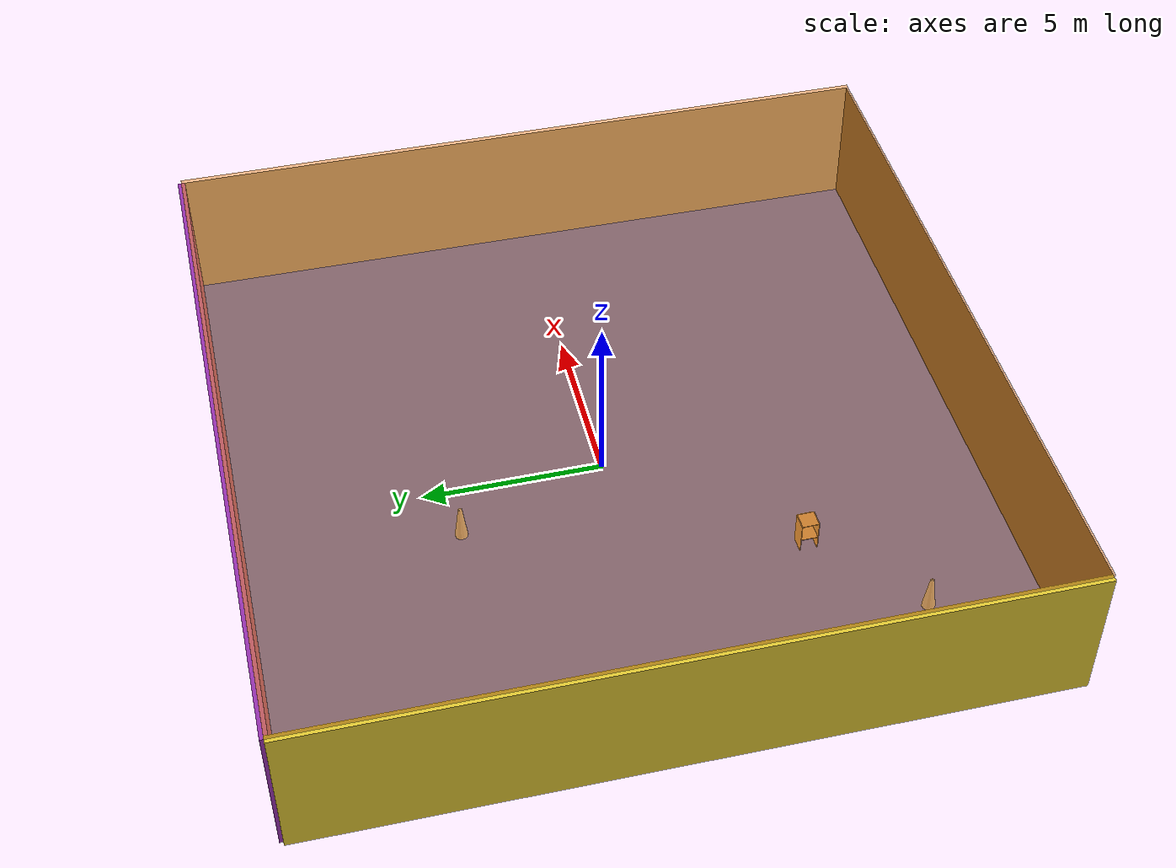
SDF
<sdf version="1.4">
 <world name="default">
  <physics type="ode">
   <max_step_size>0.001</max_step_size>
   <real_time_factor>1</real_time_factor>
   <real_time_update_rate>1000</real_time_update_rate>
   <gravity>0 0 -9.8</gravity>
  </physics>
  <scene><ambient>0.4 0.4 0.4 1</ambient><background>0.7 0.7 0.7 1</background><shadows>1</shadows></scene>
  <model name="Surrounding">
   <static>1</static>
   <link name="Ceiling">
    <collision name="Ceiling_Collision"><geometry><box><size>20 20 0.1</size></box></geometry></collision>
    <visual name="Ceiling_Visual">
     <geometry><box><size>20 20 0.1</size></box></geometry>
     <material>
      <script>
       <uri>file://media/materials/scripts/gazebo.material</uri>
       <name>Gazebo/OrangeTransparent</name>
      </script>
     </material>
    </visual>
    <pose>0 0 4.05 0 0 0</pose>
   </link>
   <link name="Wall_South">
    <collision name="Wall_South_Collision">
     <geometry><box><size>20 0 4</size></box></geometry>
     <pose>0 0 2 0 -0 0</pose>
    </collision>
    <visual name="Wall_South_Visual">
     <pose>0 0 2 0 -0 0</pose>
     <geometry><box><size>20 0 4</size></box></geometry>
     <material>
      <script><uri>file://media/materials/scripts/gazebo.material</uri><name>Gazebo/Black</name></script>
     </material>
    </visual>
    <velocity_decay><linear>0</linear><angular>0</angular></velocity_decay>
    <pose>0 -10 0 0 -0 0</pose>
   </link>
   <link name="Wall_East">
    <collision name="Wall_21_Collision">
     <geometry><box><size>20 0 4</size></box></geometry>
     <pose>0 0 2 0 -0 0</pose>
    </collision>
    <visual name="Wall_21_Visual">
     <pose>0 0 2 0 -0 0</pose>
     <geometry><box><size>20 0 4</size></box></geometry>
     <material>
      <script><uri>file://media/materials/scripts/gazebo.material</uri><name>Gazebo/Pioneer2Body</name></script>
     </material>
    </visual>
    <velocity_decay><linear>0</linear><angular>0</angular></velocity_decay>
    <pose>10 0 0 0 -0 1.5708</pose>
   </link>
   <link name="Wall_North">
    <collision name="Wall_22_Collision">
     <geometry><box><size>20 0.2 4</size></box></geometry>
     <pose>0 0 2 0 -0 0</pose>
    </collision>
    <visual name="Wall_22_Visual">
     <pose>0 0 2 0 -0 0</pose>
     <geometry><box><size>20 0.2 4</size></box></geometry>
     <material>
      <script><uri>file://media/materials/scripts/gazebo.material</uri><name>Gazebo/PurpleGlow</name></script>
     </material>
    </visual>
    <velocity_decay><linear>0</linear><angular>0</angular></velocity_decay>
    <pose>0 10 0 0 -0 0</pose>
   </link>
   <link name="Wall_West">
    <collision name="Wall_23_Collision">
     <geometry><box><size>20 0.2 4</size></box></geometry>
     <pose>0 0 2 0 -0 0</pose>
    </collision>
    <visual name="Wall_23_Visual">
     <pose>0 0 2 0 -0 0</pose>
     <geometry><box><size>20 0.2 4</size></box></geometry>
     <material>
      <script><uri>file://media/materials/scripts/gazebo.material</uri><name>Gazebo/ZincYellow</name></script>
     </material>
    </visual>
    <velocity_decay><linear>0</linear><angular>0</angular></velocity_decay>
    <pose>-10 0 0 0 0 -1.5708</pose>
   </link>
   <link name="Ground_link">
    <collision name="collision">
     <pose>0 0 .05 0 -0 0</pose>
     <geometry><box><size>20 20 0.1</size></box></geometry>
    </collision>
    <visual name="visual">
     <pose>0 0 .05 0 -0 0</pose>
     <geometry><box><size>20 20 0.1</size></box></geometry>
     <material>
      <script><uri>file://media/materials/scripts/gazebo.material</uri><name>Gazebo/BlueLaser</name></script>
     </material>
    </visual>
   </link>
   <static>1</static>
  </model>
  <spherical_coordinates>
   <surface_model>EARTH_WGS84</surface_model>
   <latitude_deg>0</latitude_deg>
   <longitude_deg>0</longitude_deg>
   <elevation>0</elevation>
   <heading_deg>0</heading_deg>
  </spherical_coordinates>
  <light name="lightball_0" type="diffuse">
   <diffuse>0.8 0.8 0.8 1</diffuse>
   <specular>0.2 0.2 0.2 1</specular>
   <attenuation>
    <range>100</range>
    <constant>0.7</constant>
    <linear>0.01</linear>
    <quadratic>0.001</quadratic>
   </attenuation>
   <direction>-0.5 0.1 -0.9</direction>
   <pose>3.4259998423 6.0085730916 3.37598304708 0 0 0</pose>
  </light>
  <light name="lightball_1" type="diffuse">
   <diffuse>0.8 0.8 0.8 1</diffuse>
   <specular>0.2 0.2 0.2 1</specular>
   <attenuation>
    <range>100</range>
    <constant>0.7</constant>
    <linear>0.01</linear>
    <quadratic>0.001</quadratic>
   </attenuation>
   <direction>-0.5 0.1 -0.9</direction>
   <pose>-6.30314409581 9.34618342541 3.402573909 0 0 0</pose>
  </light>
  <light name="lightball_2" type="diffuse">
   <diffuse>0.8 0.8 0.8 1</diffuse>
   <specular>0.2 0.2 0.2 1</specular>
   <attenuation>
    <range>100</range>
    <constant>0.7</constant>
    <linear>0.01</linear>
    <quadratic>0.001</quadratic>
   </attenuation>
   <direction>-0.5 0.1 -0.9</direction>
   <pose>4.68205116352 3.88894748488 2.57614844682 0 0 0</pose>
  </light>
  <light name="lightball_3" type="diffuse">
   <diffuse>0.8 0.8 0.8 1</diffuse>
   <specular>0.2 0.2 0.2 1</specular>
   <attenuation>
    <range>100</range>
    <constant>0.7</constant>
    <linear>0.01</linear>
    <quadratic>0.001</quadratic>
   </attenuation>
   <direction>-0.5 0.1 -0.9</direction>
   <pose>-9.72180655095 7.51161911158 0.91493898106 0 0 0</pose>
  </light>
  <light name="lightball_4" type="diffuse">
   <diffuse>0.8 0.8 0.8 1</diffuse>
   <specular>0.2 0.2 0.2 1</specular>
   <attenuation>
    <range>100</range>
    <constant>0.7</constant>
    <linear>0.01</linear>
    <quadratic>0.001</quadratic>
   </attenuation>
   <direction>-0.5 0.1 -0.9</direction>
   <pose>7.3538006955 1.58106893296 2.42998351099 0 0 0</pose>
  </light>
  <light name="lightball_5" type="diffuse">
   <diffuse>0.8 0.8 0.8 1</diffuse>
   <specular>0.2 0.2 0.2 1</specular>
   <attenuation>
    <range>100</range>
    <constant>0.7</constant>
    <linear>0.01</linear>
    <quadratic>0.001</quadratic>
   </attenuation>
   <direction>-0.5 0.1 -0.9</direction>
   <pose>-4.22914251686 -4.7885148054 1.66121345221 0 0 0</pose>
  </light>
  <light name="lightball_6" type="diffuse">
   <diffuse>0.8 0.8 0.8 1</diffuse>
   <specular>0.2 0.2 0.2 1</specular>
   <attenuation>
    <range>100</range>
    <constant>0.7</constant>
    <linear>0.01</linear>
    <quadratic>0.001</quadratic>
   </attenuation>
   <direction>-0.5 0.1 -0.9</direction>
   <pose>-1.06751640641 2.88945620324 1.63998240026 0 0 0</pose>
  </light>
  <light name="lightball_7" type="diffuse">
   <diffuse>0.8 0.8 0.8 1</diffuse>
   <specular>0.2 0.2 0.2 1</specular>
   <attenuation>
    <range>100</range>
    <constant>0.7</constant>
    <linear>0.01</linear>
    <quadratic>0.001</quadratic>
   </attenuation>
   <direction>-0.5 0.1 -0.9</direction>
   <pose>1.57605557539 1.53740204651 3.43242646896 0 0 0</pose>
  </light>
  <light name="lightball_8" type="diffuse">
   <diffuse>0.8 0.8 0.8 1</diffuse>
   <specular>0.2 0.2 0.2 1</specular>
   <attenuation>
    <range>100</range>
    <constant>0.7</constant>
    <linear>0.01</linear>
    <quadratic>0.001</quadratic>
   </attenuation>
   <direction>-0.5 0.1 -0.9</direction>
   <pose>-8.83321301213 0.569218740532 1.10935597171 0 0 0</pose>
  </light>
  <light name="lightball_9" type="diffuse">
   <diffuse>0.8 0.8 0.8 1</diffuse>
   <specular>0.2 0.2 0.2 1</specular>
   <attenuation>
    <range>100</range>
    <constant>0.7</constant>
    <linear>0.01</linear>
    <quadratic>0.001</quadratic>
   </attenuation>
   <direction>-0.5 0.1 -0.9</direction>
   <pose>6.38947654594 6.88384278012 3.59769314437 0 0 0</pose>
  </light>
  <light name="lightball_10" type="diffuse">
   <diffuse>0.8 0.8 0.8 1</diffuse>
   <specular>0.2 0.2 0.2 1</specular>
   <attenuation>
    <range>100</range>
    <constant>0.7</constant>
    <linear>0.01</linear>
    <quadratic>0.001</quadratic>
   </attenuation>
   <direction>-0.5 0.1 -0.9</direction>
   <pose>6.9746066432 -1.52048996878 3.11969537825 0 0 0</pose>
  </light>
  <light name="lightball_11" type="diffuse">
   <diffuse>0.8 0.8 0.8 1</diffuse>
   <specular>0.2 0.2 0.2 1</specular>
   <attenuation>
    <range>100</range>
    <constant>0.7</constant>
    <linear>0.01</linear>
    <quadratic>0.001</quadratic>
   </attenuation>
   <direction>-0.5 0.1 -0.9</direction>
   <pose>-6.15651857006 1.03892692533 0.574026222624 0 0 0</pose>
  </light>
  <include>
   <uri>model://construction_cone</uri>
   <pose>-6.8083431311 -6.99087767534 0 0 0 0.900768737784</pose>
  </include>
  <include><uri>model://cabinet</uri><pose>-4.04408792461 -4.57652657595 0 0 0 0.0198250452332</pose></include>
  <include>
   <uri>model://construction_cone</uri>
   <pose>-1.64177567877 4.21536515861 0 0 0 0.354247334472</pose>
  </include>
 </world>
</sdf>

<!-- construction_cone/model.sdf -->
<sdf version="1.5">
  <model name="Construction Cone">
    <link name="link">
      <collision name="collision">
        <geometry>
          <mesh>
            <scale>10 10 10</scale>
            <uri>file://isr-testbed/construction_cone/meshes/construction_cone.dae</uri>
          </mesh>
        </geometry>
      </collision>
      <visual name="visual">
        <geometry>
          <mesh>
            <scale>10 10 10</scale>
            <uri>file://isr-testbed/construction_cone/meshes/construction_cone.dae</uri>
          </mesh>
        </geometry>
      </visual>
    </link>
  </model>
</sdf>

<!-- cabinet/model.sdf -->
<sdf version="1.5">
  <model name="cabinet">
    <static>true</static>
    <link name="cabinet_bottom_plate">
      <inertial>
        <pose>0 0 -1 0 0 0</pose>
        <inertia>
          <ixx>2.050000</ixx>
          <ixy>0</ixy>
          <ixz>0</ixz>
          <iyy>2.050000</iyy>
          <iyz>0</iyz>
          <izz>2.050000</izz>
        </inertia>
        <mass>25.000000</mass>
      </inertial>
      <collision name="cabinet_bottom_plate_geom">
        <pose>0 0 0.010000 0 0 0</pose>
        <geometry>
          <box>
            <size>0.450000 0.450000 0.020000</size>
          </box>
        </geometry>
      </collision>
      <visual name="cabinet_bottom_plate_geom_visual">
        <pose>0 0 0.010000 0 0 0</pose>
        <geometry>
          <box>
            <size>0.450000 0.450000 0.020000</size>
          </box>
        </geometry>
        <material>
          <script>
            <uri>model://media/materials/scripts/gazebo.material</uri>
            <name>Gazebo/Wood</name>
          </script>
        </material>
      </visual>
      <collision name="cabinet_bottom_plate_geom_cabinet_back_plate">
        <pose>0.235000 0 0.510000 0 0 0</pose>
        <geometry>
          <box>
            <size>0.020000 0.450000 1.020000</size>
          </box>
        </geometry>
      </collision>
      <visual name="cabinet_bottom_plate_geom_cabinet_back_plate_visual">
        <pose>0.235000 0 0.510000 0 0 0</pose>
        <geometry>
          <box>
            <size>0.020000 0.450000 1.020000</size>
          </box>
        </geometry>
        <material>
          <script>
            <uri>model://media/materials/scripts/gazebo.material</uri>
            <name>Gazebo/Wood</name>
          </script>
        </material>
      </visual>
      <collision name="cabinet_bottom_plate_geom_cabinet_left_plate">
        <pose>0 0.235000 0.510000 0 0 0</pose>
        <geometry>
          <box>
            <size>0.450000 0.020000 1.020000</size>
          </box>
        </geometry>
      </collision>
      <visual name="cabinet_bottom_plate_geom_cabinet_left_plate_visual">
        <pose>0 0.235000 0.510000 0 0 0</pose>
        <geometry>
          <box>
            <size>0.450000 0.020000 1.020000</size>
          </box>
        </geometry>
        <material>
          <script>
            <uri>model://media/materials/scripts/gazebo.material</uri>
            <name>Gazebo/Wood</name>
          </script>
        </material>
      </visual>
      <collision name="cabinet_bottom_plate_geom_cabinet_middle_plate">
        <pose>0 0 0.510000 0 0 0</pose>
        <geometry>
          <box>
            <size>0.450000 0.450000 0.020000</size>
          </box>
        </geometry>
      </collision>
      <visual name="cabinet_bottom_plate_geom_cabinet_middle_plate_visual">
        <pose>0 0 0.510000 0 0 0</pose>
        <geometry>
          <box>
            <size>0.450000 0.450000 0.020000</size>
          </box>
        </geometry>
        <material>
          <script>
            <uri>model://media/materials/scripts/gazebo.material</uri>
            <name>Gazebo/Wood</name>
          </script>
        </material>
      </visual>
      <collision name="cabinet_bottom_plate_geom_cabinet_right_plate">
        <pose>0 -0.235000 0.510000 0 0 0</pose>
        <geometry>
          <box>
            <size>0.450000 0.020000 1.020000</size>
          </box>
        </geometry>
      </collision>
      <visual name="cabinet_bottom_plate_geom_cabinet_right_plate_visual">
        <pose>0 -0.235000 0.510000 0 0 0</pose>
        <geometry>
          <box>
            <size>0.450000 0.020000 1.020000</size>
          </box>
        </geometry>
        <material>
          <script>
            <uri>model://media/materials/scripts/gazebo.material</uri>
            <name>Gazebo/Wood</name>
          </script>
        </material>
      </visual>
      <collision name="cabinet_bottom_plate_geom_cabinet_top_plate">
        <pose>0 0 1.010000 0 0 0</pose>
        <geometry>
          <box>
            <size>0.450000 0.450000 0.020000</size>
          </box>
        </geometry>
      </collision>
      <visual name="cabinet_bottom_plate_geom_cabinet_top_plate_visual">
        <pose>0 0 1.010000 0 0 0</pose>
        <geometry>
          <box>
            <size>0.450000 0.450000 0.020000</size>
          </box>
        </geometry>
        <material>
          <script>
            <uri>model://media/materials/scripts/gazebo.material</uri>
            <name>Gazebo/Wood</name>
          </script>
        </material>
      </visual>
    </link>
  </model>
</sdf>
